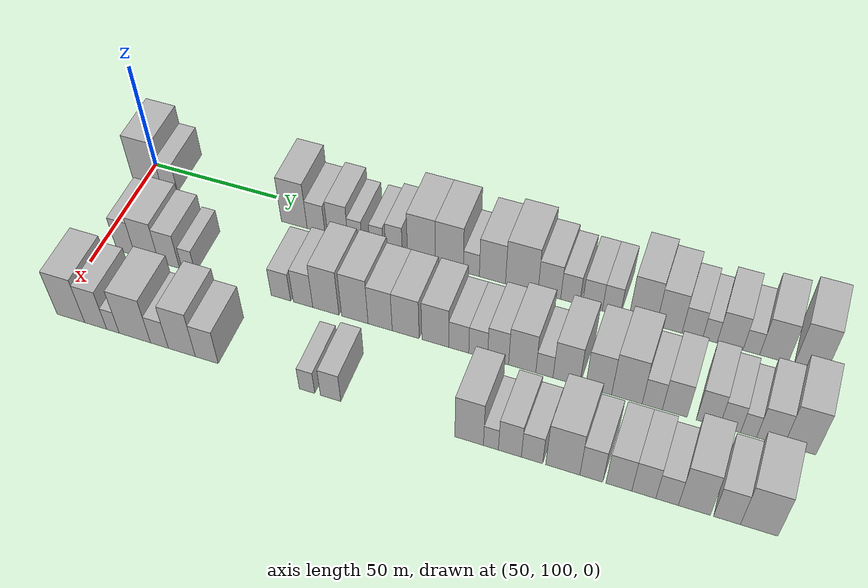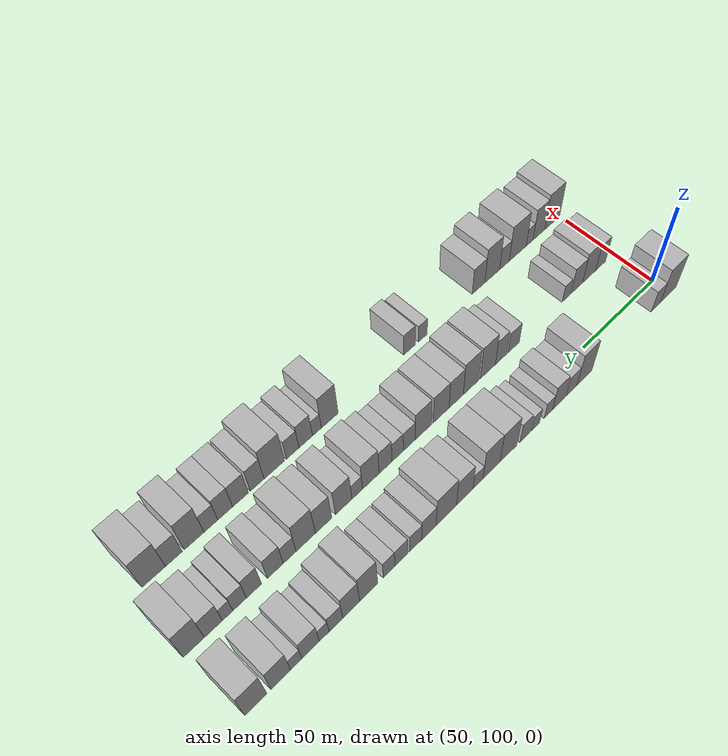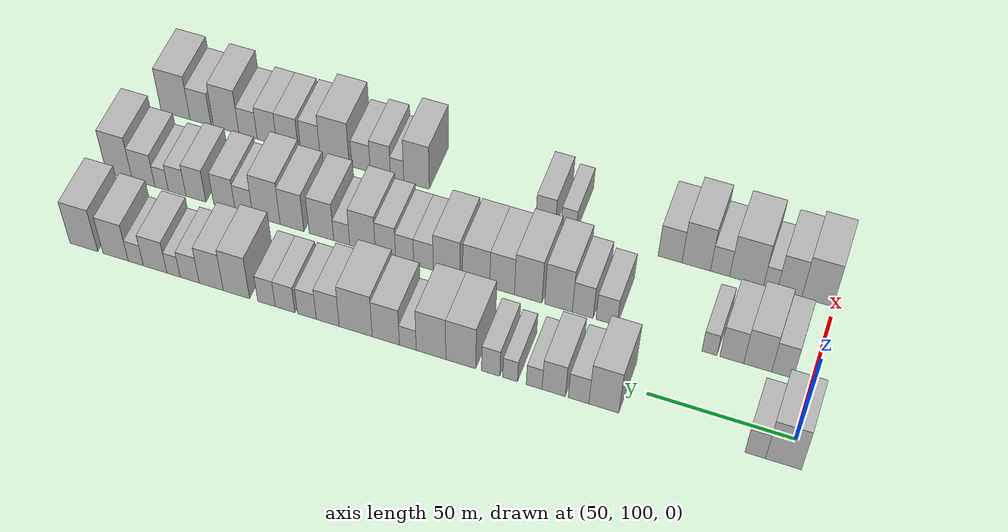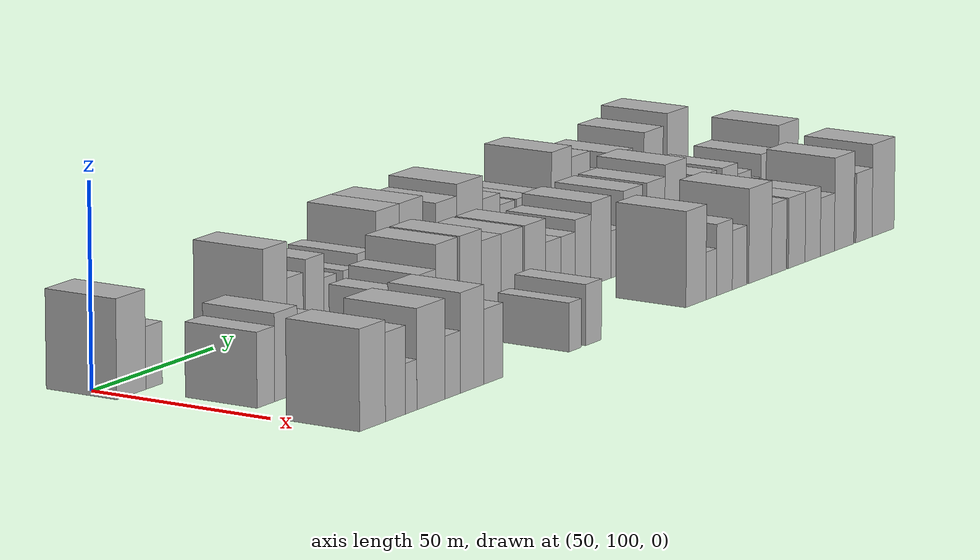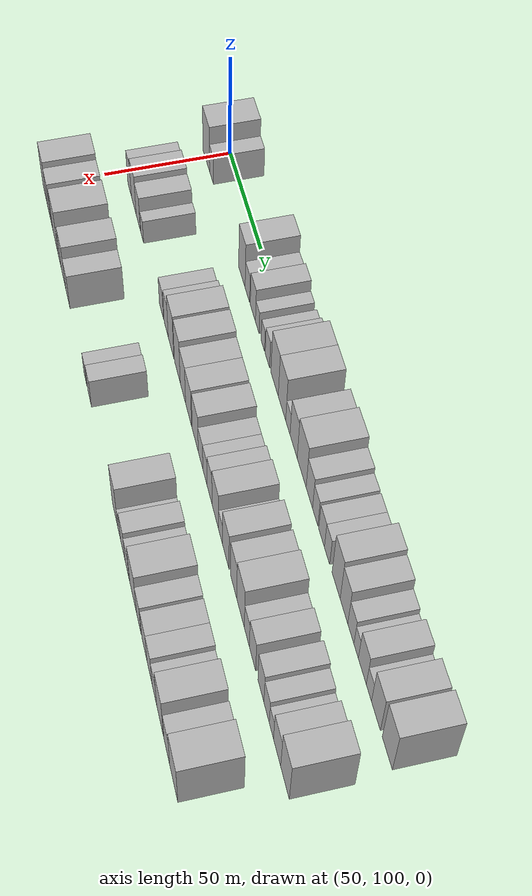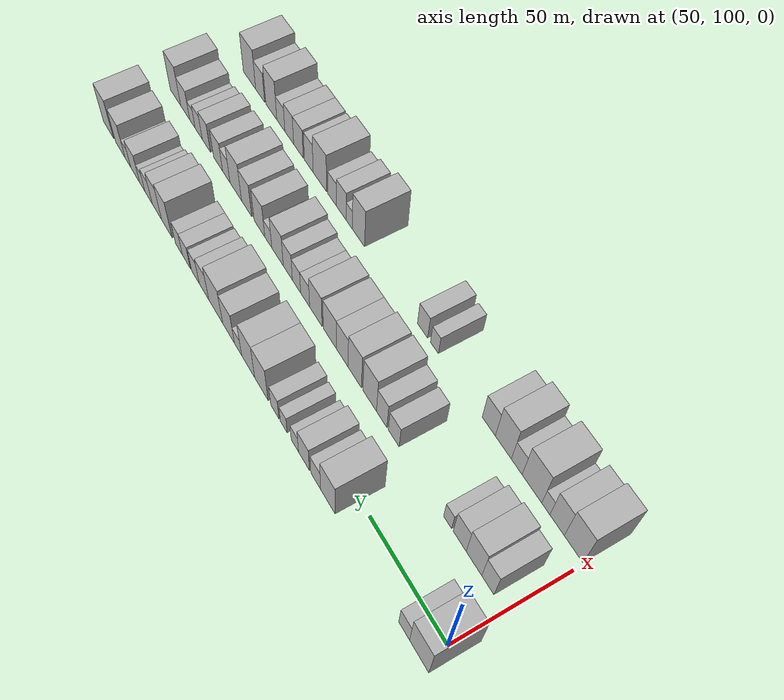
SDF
<sdf version="1.6">
 <world name="default">
  <model name="building_47">
   <static>1</static>
   <pose>50.0000 101.6979 0 0.000000 0.000000 0.000000</pose>
   <link name="link">
    <pose>0 0 12.00 0 0 0</pose>
    <collision name="collision"><geometry><box><size>20.0000 11.7844 24.0000</size></box></geometry></collision>
    <visual name="visual">
     <cast_shadows>0</cast_shadows>
     <geometry><box><size>20.0000 11.7844 24.0000</size></box></geometry>
     <material>
      <script>
       <uri>model://HANNAS_wall/materials/scripts</uri>
       <uri>model://HANNAS_wall/materials/textures</uri>
       <name>vrc/HANNAS_wall</name>
      </script>
     </material>
    </visual>
   </link>
  </model>
  <model name="building_48">
   <static>1</static>
   <pose>50.0000 110.9772 0 0.000000 0.000000 0.000000</pose>
   <link name="link">
    <pose>0 0 7.50 0 0 0</pose>
    <collision name="collision"><geometry><box><size>20.0000 6.7743 15.0000</size></box></geometry></collision>
    <visual name="visual">
     <cast_shadows>0</cast_shadows>
     <geometry><box><size>20.0000 6.7743 15.0000</size></box></geometry>
     <material>
      <script>
       <uri>model://HANNAS_wall/materials/scripts</uri>
       <uri>model://HANNAS_wall/materials/textures</uri>
       <name>vrc/HANNAS_wall</name>
      </script>
     </material>
    </visual>
   </link>
  </model>
  <model name="building_49">
   <static>1</static>
   <pose>50.0000 161.6814 0 0.000000 0.000000 0.000000</pose>
   <link name="link">
    <pose>0 0 12.00 0 0 0</pose>
    <collision name="collision"><geometry><box><size>20.0000 10.2114 24.0000</size></box></geometry></collision>
    <visual name="visual">
     <cast_shadows>0</cast_shadows>
     <geometry><box><size>20.0000 10.2114 24.0000</size></box></geometry>
     <material>
      <script>
       <uri>model://HANNAS_wall/materials/scripts</uri>
       <uri>model://HANNAS_wall/materials/textures</uri>
       <name>vrc/HANNAS_wall</name>
      </script>
     </material>
    </visual>
   </link>
  </model>
  <model name="building_50">
   <static>1</static>
   <pose>50.0000 170.3060 0 0.000000 0.000000 0.000000</pose>
   <link name="link">
    <pose>0 0 7.50 0 0 0</pose>
    <collision name="collision"><geometry><box><size>20.0000 7.0377 15.0000</size></box></geometry></collision>
    <visual name="visual">
     <cast_shadows>0</cast_shadows>
     <geometry><box><size>20.0000 7.0377 15.0000</size></box></geometry>
     <material>
      <script>
       <uri>model://HANNAS_wall/materials/scripts</uri>
       <uri>model://HANNAS_wall/materials/textures</uri>
       <name>vrc/HANNAS_wall</name>
      </script>
     </material>
    </visual>
   </link>
  </model>
  <model name="building_51">
   <static>1</static>
   <pose>50.0000 178.8272 0 0.000000 0.000000 0.000000</pose>
   <link name="link">
    <pose>0 0 9.00 0 0 0</pose>
    <collision name="collision"><geometry><box><size>20.0000 8.0048 18.0000</size></box></geometry></collision>
    <visual name="visual">
     <cast_shadows>0</cast_shadows>
     <geometry><box><size>20.0000 8.0048 18.0000</size></box></geometry>
     <material>
      <script>
       <uri>model://HANNAS_wall/materials/scripts</uri>
       <uri>model://HANNAS_wall/materials/textures</uri>
       <name>vrc/HANNAS_wall</name>
      </script>
     </material>
    </visual>
   </link>
  </model>
  <model name="building_52">
   <static>1</static>
   <pose>50.0000 185.5706 0 0.000000 0.000000 0.000000</pose>
   <link name="link">
    <pose>0 0 6.00 0 0 0</pose>
    <collision name="collision"><geometry><box><size>20.0000 5.4821 12.0000</size></box></geometry></collision>
    <visual name="visual">
     <cast_shadows>0</cast_shadows>
     <geometry><box><size>20.0000 5.4821 12.0000</size></box></geometry>
     <material>
      <script>
       <uri>model://HANNAS_wall/materials/scripts</uri>
       <uri>model://HANNAS_wall/materials/textures</uri>
       <name>vrc/HANNAS_wall</name>
      </script>
     </material>
    </visual>
   </link>
  </model>
  <model name="building_53">
   <static>1</static>
   <pose>50.0000 193.8831 0 0.000000 0.000000 0.000000</pose>
   <link name="link">
    <pose>0 0 6.00 0 0 0</pose>
    <collision name="collision"><geometry><box><size>20.0000 5.1428 12.0000</size></box></geometry></collision>
    <visual name="visual">
     <cast_shadows>0</cast_shadows>
     <geometry><box><size>20.0000 5.1428 12.0000</size></box></geometry>
     <material>
      <script>
       <uri>model://HANNAS_wall/materials/scripts</uri>
       <uri>model://HANNAS_wall/materials/textures</uri>
       <name>vrc/HANNAS_wall</name>
      </script>
     </material>
    </visual>
   </link>
  </model>
  <model name="building_54">
   <static>1</static>
   <pose>50.0000 200.6551 0 0.000000 0.000000 0.000000</pose>
   <link name="link">
    <pose>0 0 7.50 0 0 0</pose>
    <collision name="collision"><geometry><box><size>20.0000 6.4012 15.0000</size></box></geometry></collision>
    <visual name="visual">
     <cast_shadows>0</cast_shadows>
     <geometry><box><size>20.0000 6.4012 15.0000</size></box></geometry>
     <material>
      <script>
       <uri>model://HANNAS_wall/materials/scripts</uri>
       <uri>model://HANNAS_wall/materials/textures</uri>
       <name>vrc/HANNAS_wall</name>
      </script>
     </material>
    </visual>
   </link>
  </model>
  <model name="building_55">
   <static>1</static>
   <pose>50.0000 211.1271 0 0.000000 0.000000 0.000000</pose>
   <link name="link">
    <pose>0 0 12.00 0 0 0</pose>
    <collision name="collision"><geometry><box><size>20.0000 10.5428 24.0000</size></box></geometry></collision>
    <visual name="visual">
     <cast_shadows>0</cast_shadows>
     <geometry><box><size>20.0000 10.5428 24.0000</size></box></geometry>
     <material>
      <script>
       <uri>model://HANNAS_wall/materials/scripts</uri>
       <uri>model://HANNAS_wall/materials/textures</uri>
       <name>vrc/HANNAS_wall</name>
      </script>
     </material>
    </visual>
   </link>
  </model>
  <model name="building_56">
   <static>1</static>
   <pose>50.0000 221.6350 0 0.000000 0.000000 0.000000</pose>
   <link name="link">
    <pose>0 0 12.00 0 0 0</pose>
    <collision name="collision"><geometry><box><size>20.0000 10.4730 24.0000</size></box></geometry></collision>
    <visual name="visual">
     <cast_shadows>0</cast_shadows>
     <geometry><box><size>20.0000 10.4730 24.0000</size></box></geometry>
     <material>
      <script>
       <uri>model://HANNAS_wall/materials/scripts</uri>
       <uri>model://HANNAS_wall/materials/textures</uri>
       <name>vrc/HANNAS_wall</name>
      </script>
     </material>
    </visual>
   </link>
  </model>
  <model name="building_57">
   <static>1</static>
   <pose>50.0000 229.8627 0 0.000000 0.000000 0.000000</pose>
   <link name="link">
    <pose>0 0 6.00 0 0 0</pose>
    <collision name="collision"><geometry><box><size>20.0000 5.9825 12.0000</size></box></geometry></collision>
    <visual name="visual">
     <cast_shadows>0</cast_shadows>
     <geometry><box><size>20.0000 5.9825 12.0000</size></box></geometry>
     <material>
      <script>
       <uri>model://HANNAS_wall/materials/scripts</uri>
       <uri>model://HANNAS_wall/materials/textures</uri>
       <name>vrc/HANNAS_wall</name>
      </script>
     </material>
    </visual>
   </link>
  </model>
  <model name="building_58">
   <static>1</static>
   <pose>50.0000 237.6955 0 0.000000 0.000000 0.000000</pose>
   <link name="link">
    <pose>0 0 10.50 0 0 0</pose>
    <collision name="collision"><geometry><box><size>20.0000 9.6830 21.0000</size></box></geometry></collision>
    <visual name="visual">
     <cast_shadows>0</cast_shadows>
     <geometry><box><size>20.0000 9.6830 21.0000</size></box></geometry>
     <material>
      <script>
       <uri>model://HANNAS_wall/materials/scripts</uri>
       <uri>model://HANNAS_wall/materials/textures</uri>
       <name>vrc/HANNAS_wall</name>
      </script>
     </material>
    </visual>
   </link>
  </model>
  <model name="building_59">
   <static>1</static>
   <pose>50.0000 248.4919 0 0.000000 0.000000 0.000000</pose>
   <link name="link">
    <pose>0 0 12.00 0 0 0</pose>
    <collision name="collision"><geometry><box><size>20.0000 11.9099 24.0000</size></box></geometry></collision>
    <visual name="visual">
     <cast_shadows>0</cast_shadows>
     <geometry><box><size>20.0000 11.9099 24.0000</size></box></geometry>
     <material>
      <script>
       <uri>model://HANNAS_wall/materials/scripts</uri>
       <uri>model://HANNAS_wall/materials/textures</uri>
       <name>vrc/HANNAS_wall</name>
      </script>
     </material>
    </visual>
   </link>
  </model>
  <model name="building_60">
   <static>1</static>
   <pose>50.0000 258.5899 0 0.000000 0.000000 0.000000</pose>
   <link name="link">
    <pose>0 0 9.00 0 0 0</pose>
    <collision name="collision"><geometry><box><size>20.0000 8.2860 18.0000</size></box></geometry></collision>
    <visual name="visual">
     <cast_shadows>0</cast_shadows>
     <geometry><box><size>20.0000 8.2860 18.0000</size></box></geometry>
     <material>
      <script>
       <uri>model://HANNAS_wall/materials/scripts</uri>
       <uri>model://HANNAS_wall/materials/textures</uri>
       <name>vrc/HANNAS_wall</name>
      </script>
     </material>
    </visual>
   </link>
  </model>
  <model name="building_61">
   <static>1</static>
   <pose>50.0000 266.1512 0 0.000000 0.000000 0.000000</pose>
   <link name="link">
    <pose>0 0 7.50 0 0 0</pose>
    <collision name="collision"><geometry><box><size>20.0000 6.8367 15.0000</size></box></geometry></collision>
    <visual name="visual">
     <cast_shadows>0</cast_shadows>
     <geometry><box><size>20.0000 6.8367 15.0000</size></box></geometry>
     <material>
      <script>
       <uri>model://HANNAS_wall/materials/scripts</uri>
       <uri>model://HANNAS_wall/materials/textures</uri>
       <name>vrc/HANNAS_wall</name>
      </script>
     </material>
    </visual>
   </link>
  </model>
  <model name="building_62">
   <static>1</static>
   <pose>50.0000 274.1442 0 0.000000 0.000000 0.000000</pose>
   <link name="link">
    <pose>0 0 7.50 0 0 0</pose>
    <collision name="collision"><geometry><box><size>20.0000 7.1492 15.0000</size></box></geometry></collision>
    <visual name="visual">
     <cast_shadows>0</cast_shadows>
     <geometry><box><size>20.0000 7.1492 15.0000</size></box></geometry>
     <material>
      <script>
       <uri>model://HANNAS_wall/materials/scripts</uri>
       <uri>model://HANNAS_wall/materials/textures</uri>
       <name>vrc/HANNAS_wall</name>
      </script>
     </material>
    </visual>
   </link>
  </model>
  <model name="building_63">
   <static>1</static>
   <pose>50.0000 280.9306 0 0.000000 0.000000 0.000000</pose>
   <link name="link">
    <pose>0 0 7.50 0 0 0</pose>
    <collision name="collision"><geometry><box><size>20.0000 6.4235 15.0000</size></box></geometry></collision>
    <visual name="visual">
     <cast_shadows>0</cast_shadows>
     <geometry><box><size>20.0000 6.4235 15.0000</size></box></geometry>
     <material>
      <script>
       <uri>model://HANNAS_wall/materials/scripts</uri>
       <uri>model://HANNAS_wall/materials/textures</uri>
       <name>vrc/HANNAS_wall</name>
      </script>
     </material>
    </visual>
   </link>
  </model>
  <model name="building_64">
   <static>1</static>
   <pose>50.0000 292.0159 0 0.000000 0.000000 0.000000</pose>
   <link name="link">
    <pose>0 0 12.00 0 0 0</pose>
    <collision name="collision"><geometry><box><size>20.0000 9.7471 24.0000</size></box></geometry></collision>
    <visual name="visual">
     <cast_shadows>0</cast_shadows>
     <geometry><box><size>20.0000 9.7471 24.0000</size></box></geometry>
     <material>
      <script>
       <uri>model://HANNAS_wall/materials/scripts</uri>
       <uri>model://HANNAS_wall/materials/textures</uri>
       <name>vrc/HANNAS_wall</name>
      </script>
     </material>
    </visual>
   </link>
  </model>
  <model name="building_65">
   <static>1</static>
   <pose>50.0000 301.3566 0 0.000000 0.000000 0.000000</pose>
   <link name="link">
    <pose>0 0 10.50 0 0 0</pose>
    <collision name="collision"><geometry><box><size>20.0000 8.9344 21.0000</size></box></geometry></collision>
    <visual name="visual">
     <cast_shadows>0</cast_shadows>
     <geometry><box><size>20.0000 8.9344 21.0000</size></box></geometry>
     <material>
      <script>
       <uri>model://HANNAS_wall/materials/scripts</uri>
       <uri>model://HANNAS_wall/materials/textures</uri>
       <name>vrc/HANNAS_wall</name>
      </script>
     </material>
    </visual>
   </link>
  </model>
  <model name="building_66">
   <static>1</static>
   <pose>50.0000 309.3874 0 0.000000 0.000000 0.000000</pose>
   <link name="link">
    <pose>0 0 7.50 0 0 0</pose>
    <collision name="collision"><geometry><box><size>20.0000 7.1272 15.0000</size></box></geometry></collision>
    <visual name="visual">
     <cast_shadows>0</cast_shadows>
     <geometry><box><size>20.0000 7.1272 15.0000</size></box></geometry>
     <material>
      <script>
       <uri>model://HANNAS_wall/materials/scripts</uri>
       <uri>model://HANNAS_wall/materials/textures</uri>
       <name>vrc/HANNAS_wall</name>
      </script>
     </material>
    </visual>
   </link>
  </model>
  <model name="building_67">
   <static>1</static>
   <pose>50.0000 315.4517 0 0.000000 0.000000 0.000000</pose>
   <link name="link">
    <pose>0 0 6.00 0 0 0</pose>
    <collision name="collision"><geometry><box><size>20.0000 5.0014 12.0000</size></box></geometry></collision>
    <visual name="visual">
     <cast_shadows>0</cast_shadows>
     <geometry><box><size>20.0000 5.0014 12.0000</size></box></geometry>
     <material>
      <script>
       <uri>model://HANNAS_wall/materials/scripts</uri>
       <uri>model://HANNAS_wall/materials/textures</uri>
       <name>vrc/HANNAS_wall</name>
      </script>
     </material>
    </visual>
   </link>
  </model>
  <model name="building_68">
   <static>1</static>
   <pose>50.0000 322.3887 0 0.000000 0.000000 0.000000</pose>
   <link name="link">
    <pose>0 0 9.00 0 0 0</pose>
    <collision name="collision"><geometry><box><size>20.0000 8.8725 18.0000</size></box></geometry></collision>
    <visual name="visual">
     <cast_shadows>0</cast_shadows>
     <geometry><box><size>20.0000 8.8725 18.0000</size></box></geometry>
     <material>
      <script>
       <uri>model://HANNAS_wall/materials/scripts</uri>
       <uri>model://HANNAS_wall/materials/textures</uri>
       <name>vrc/HANNAS_wall</name>
      </script>
     </material>
    </visual>
   </link>
  </model>
  <model name="building_69">
   <static>1</static>
   <pose>50.0000 329.6839 0 0.000000 0.000000 0.000000</pose>
   <link name="link">
    <pose>0 0 6.00 0 0 0</pose>
    <collision name="collision"><geometry><box><size>20.0000 5.7180 12.0000</size></box></geometry></collision>
    <visual name="visual">
     <cast_shadows>0</cast_shadows>
     <geometry><box><size>20.0000 5.7180 12.0000</size></box></geometry>
     <material>
      <script>
       <uri>model://HANNAS_wall/materials/scripts</uri>
       <uri>model://HANNAS_wall/materials/textures</uri>
       <name>vrc/HANNAS_wall</name>
      </script>
     </material>
    </visual>
   </link>
  </model>
  <model name="building_70">
   <static>1</static>
   <pose>50.0000 337.3587 0 0.000000 0.000000 0.000000</pose>
   <link name="link">
    <pose>0 0 10.50 0 0 0</pose>
    <collision name="collision"><geometry><box><size>20.0000 9.6316 21.0000</size></box></geometry></collision>
    <visual name="visual">
     <cast_shadows>0</cast_shadows>
     <geometry><box><size>20.0000 9.6316 21.0000</size></box></geometry>
     <material>
      <script>
       <uri>model://HANNAS_wall/materials/scripts</uri>
       <uri>model://HANNAS_wall/materials/textures</uri>
       <name>vrc/HANNAS_wall</name>
      </script>
     </material>
    </visual>
   </link>
  </model>
  <model name="building_71">
   <static>1</static>
   <pose>50.0000 349.4940 0 0.000000 0.000000 0.000000</pose>
   <link name="link">
    <pose>0 0 12.00 0 0 0</pose>
    <collision name="collision"><geometry><box><size>20.0000 10.6389 24.0000</size></box></geometry></collision>
    <visual name="visual">
     <cast_shadows>0</cast_shadows>
     <geometry><box><size>20.0000 10.6389 24.0000</size></box></geometry>
     <material>
      <script>
       <uri>model://HANNAS_wall/materials/scripts</uri>
       <uri>model://HANNAS_wall/materials/textures</uri>
       <name>vrc/HANNAS_wall</name>
      </script>
     </material>
    </visual>
   </link>
  </model>
  <model name="building_124">
   <static>1</static>
   <pose>82.0000 110.0228 0 0.000000 0.000000 0.000000</pose>
   <link name="link">
    <pose>0 0 9.00 0 0 0</pose>
    <collision name="collision"><geometry><box><size>20.0000 7.3022 18.0000</size></box></geometry></collision>
    <visual name="visual">
     <cast_shadows>0</cast_shadows>
     <geometry><box><size>20.0000 7.3022 18.0000</size></box></geometry>
     <material>
      <script>
       <uri>model://HANNAS_wall/materials/scripts</uri>
       <uri>model://HANNAS_wall/materials/textures</uri>
       <name>vrc/HANNAS_wall</name>
      </script>
     </material>
    </visual>
   </link>
  </model>
  <model name="building_125">
   <static>1</static>
   <pose>82.0000 118.4263 0 0.000000 0.000000 0.000000</pose>
   <link name="link">
    <pose>0 0 10.50 0 0 0</pose>
    <collision name="collision"><geometry><box><size>20.0000 9.5049 21.0000</size></box></geometry></collision>
    <visual name="visual">
     <cast_shadows>0</cast_shadows>
     <geometry><box><size>20.0000 9.5049 21.0000</size></box></geometry>
     <material>
      <script>
       <uri>model://HANNAS_wall/materials/scripts</uri>
       <uri>model://HANNAS_wall/materials/textures</uri>
       <name>vrc/HANNAS_wall</name>
      </script>
     </material>
    </visual>
   </link>
  </model>
  <model name="building_126">
   <static>1</static>
   <pose>82.0000 127.2636 0 0.000000 0.000000 0.000000</pose>
   <link name="link">
    <pose>0 0 9.00 0 0 0</pose>
    <collision name="collision"><geometry><box><size>20.0000 8.1695 18.0000</size></box></geometry></collision>
    <visual name="visual">
     <cast_shadows>0</cast_shadows>
     <geometry><box><size>20.0000 8.1695 18.0000</size></box></geometry>
     <material>
      <script>
       <uri>model://HANNAS_wall/materials/scripts</uri>
       <uri>model://HANNAS_wall/materials/textures</uri>
       <name>vrc/HANNAS_wall</name>
      </script>
     </material>
    </visual>
   </link>
  </model>
  <model name="building_127">
   <static>1</static>
   <pose>82.0000 134.9237 0 0.000000 0.000000 0.000000</pose>
   <link name="link">
    <pose>0 0 6.00 0 0 0</pose>
    <collision name="collision"><geometry><box><size>20.0000 5.1508 12.0000</size></box></geometry></collision>
    <visual name="visual">
     <cast_shadows>0</cast_shadows>
     <geometry><box><size>20.0000 5.1508 12.0000</size></box></geometry>
     <material>
      <script>
       <uri>model://HANNAS_wall/materials/scripts</uri>
       <uri>model://HANNAS_wall/materials/textures</uri>
       <name>vrc/HANNAS_wall</name>
      </script>
     </material>
    </visual>
   </link>
  </model>
  <model name="building_128">
   <static>1</static>
   <pose>82.0000 170.6392 0 0.000000 0.000000 0.000000</pose>
   <link name="link">
    <pose>0 0 7.50 0 0 0</pose>
    <collision name="collision"><geometry><box><size>20.0000 7.4267 15.0000</size></box></geometry></collision>
    <visual name="visual">
     <cast_shadows>0</cast_shadows>
     <geometry><box><size>20.0000 7.4267 15.0000</size></box></geometry>
     <material>
      <script>
       <uri>model://HANNAS_wall/materials/scripts</uri>
       <uri>model://HANNAS_wall/materials/textures</uri>
       <name>vrc/HANNAS_wall</name>
      </script>
     </material>
    </visual>
   </link>
  </model>
  <model name="building_129">
   <static>1</static>
   <pose>82.0000 179.0198 0 0.000000 0.000000 0.000000</pose>
   <link name="link">
    <pose>0 0 9.00 0 0 0</pose>
    <collision name="collision"><geometry><box><size>20.0000 7.3344 18.0000</size></box></geometry></collision>
    <visual name="visual">
     <cast_shadows>0</cast_shadows>
     <geometry><box><size>20.0000 7.3344 18.0000</size></box></geometry>
     <material>
      <script>
       <uri>model://HANNAS_wall/materials/scripts</uri>
       <uri>model://HANNAS_wall/materials/textures</uri>
       <name>vrc/HANNAS_wall</name>
      </script>
     </material>
    </visual>
   </link>
  </model>
  <model name="building_130">
   <static>1</static>
   <pose>82.0000 187.5931 0 0.000000 0.000000 0.000000</pose>
   <link name="link">
    <pose>0 0 12.00 0 0 0</pose>
    <collision name="collision"><geometry><box><size>20.0000 9.8122 24.0000</size></box></geometry></collision>
    <visual name="visual">
     <cast_shadows>0</cast_shadows>
     <geometry><box><size>20.0000 9.8122 24.0000</size></box></geometry>
     <material>
      <script>
       <uri>model://HANNAS_wall/materials/scripts</uri>
       <uri>model://HANNAS_wall/materials/textures</uri>
       <name>vrc/HANNAS_wall</name>
      </script>
     </material>
    </visual>
   </link>
  </model>
  <model name="building_131">
   <static>1</static>
   <pose>82.0000 198.4019 0 0.000000 0.000000 0.000000</pose>
   <link name="link">
    <pose>0 0 12.00 0 0 0</pose>
    <collision name="collision"><geometry><box><size>20.0000 9.8053 24.0000</size></box></geometry></collision>
    <visual name="visual">
     <cast_shadows>0</cast_shadows>
     <geometry><box><size>20.0000 9.8053 24.0000</size></box></geometry>
     <material>
      <script>
       <uri>model://HANNAS_wall/materials/scripts</uri>
       <uri>model://HANNAS_wall/materials/textures</uri>
       <name>vrc/HANNAS_wall</name>
      </script>
     </material>
    </visual>
   </link>
  </model>
  <model name="building_132">
   <static>1</static>
   <pose>82.0000 207.7416 0 0.000000 0.000000 0.000000</pose>
   <link name="link">
    <pose>0 0 10.50 0 0 0</pose>
    <collision name="collision"><geometry><box><size>20.0000 8.8742 21.0000</size></box></geometry></collision>
    <visual name="visual">
     <cast_shadows>0</cast_shadows>
     <geometry><box><size>20.0000 8.8742 21.0000</size></box></geometry>
     <material>
      <script>
       <uri>model://HANNAS_wall/materials/scripts</uri>
       <uri>model://HANNAS_wall/materials/textures</uri>
       <name>vrc/HANNAS_wall</name>
      </script>
     </material>
    </visual>
   </link>
  </model>
  <model name="building_133">
   <static>1</static>
   <pose>82.0000 217.0721 0 0.000000 0.000000 0.000000</pose>
   <link name="link">
    <pose>0 0 10.50 0 0 0</pose>
    <collision name="collision"><geometry><box><size>20.0000 9.7868 21.0000</size></box></geometry></collision>
    <visual name="visual">
     <cast_shadows>0</cast_shadows>
     <geometry><box><size>20.0000 9.7868 21.0000</size></box></geometry>
     <material>
      <script>
       <uri>model://HANNAS_wall/materials/scripts</uri>
       <uri>model://HANNAS_wall/materials/textures</uri>
       <name>vrc/HANNAS_wall</name>
      </script>
     </material>
    </visual>
   </link>
  </model>
  <model name="building_134">
   <static>1</static>
   <pose>82.0000 227.8045 0 0.000000 0.000000 0.000000</pose>
   <link name="link">
    <pose>0 0 10.50 0 0 0</pose>
    <collision name="collision"><geometry><box><size>20.0000 9.6780 21.0000</size></box></geometry></collision>
    <visual name="visual">
     <cast_shadows>0</cast_shadows>
     <geometry><box><size>20.0000 9.6780 21.0000</size></box></geometry>
     <material>
      <script>
       <uri>model://HANNAS_wall/materials/scripts</uri>
       <uri>model://HANNAS_wall/materials/textures</uri>
       <name>vrc/HANNAS_wall</name>
      </script>
     </material>
    </visual>
   </link>
  </model>
  <model name="building_135">
   <static>1</static>
   <pose>82.0000 236.2207 0 0.000000 0.000000 0.000000</pose>
   <link name="link">
    <pose>0 0 7.50 0 0 0</pose>
    <collision name="collision"><geometry><box><size>20.0000 7.1544 15.0000</size></box></geometry></collision>
    <visual name="visual">
     <cast_shadows>0</cast_shadows>
     <geometry><box><size>20.0000 7.1544 15.0000</size></box></geometry>
     <material>
      <script>
       <uri>model://HANNAS_wall/materials/scripts</uri>
       <uri>model://HANNAS_wall/materials/textures</uri>
       <name>vrc/HANNAS_wall</name>
      </script>
     </material>
    </visual>
   </link>
  </model>
  <model name="building_136">
   <static>1</static>
   <pose>82.0000 243.1283 0 0.000000 0.000000 0.000000</pose>
   <link name="link">
    <pose>0 0 7.50 0 0 0</pose>
    <collision name="collision"><geometry><box><size>20.0000 6.6607 15.0000</size></box></geometry></collision>
    <visual name="visual">
     <cast_shadows>0</cast_shadows>
     <geometry><box><size>20.0000 6.6607 15.0000</size></box></geometry>
     <material>
      <script>
       <uri>model://HANNAS_wall/materials/scripts</uri>
       <uri>model://HANNAS_wall/materials/textures</uri>
       <name>vrc/HANNAS_wall</name>
      </script>
     </material>
    </visual>
   </link>
  </model>
  <model name="building_137">
   <static>1</static>
   <pose>82.0000 250.1641 0 0.000000 0.000000 0.000000</pose>
   <link name="link">
    <pose>0 0 9.00 0 0 0</pose>
    <collision name="collision"><geometry><box><size>20.0000 7.4108 18.0000</size></box></geometry></collision>
    <visual name="visual">
     <cast_shadows>0</cast_shadows>
     <geometry><box><size>20.0000 7.4108 18.0000</size></box></geometry>
     <material>
      <script>
       <uri>model://HANNAS_wall/materials/scripts</uri>
       <uri>model://HANNAS_wall/materials/textures</uri>
       <name>vrc/HANNAS_wall</name>
      </script>
     </material>
    </visual>
   </link>
  </model>
  <model name="building_138">
   <static>1</static>
   <pose>82.0000 258.6452 0 0.000000 0.000000 0.000000</pose>
   <link name="link">
    <pose>0 0 10.50 0 0 0</pose>
    <collision name="collision"><geometry><box><size>20.0000 9.5515 21.0000</size></box></geometry></collision>
    <visual name="visual">
     <cast_shadows>0</cast_shadows>
     <geometry><box><size>20.0000 9.5515 21.0000</size></box></geometry>
     <material>
      <script>
       <uri>model://HANNAS_wall/materials/scripts</uri>
       <uri>model://HANNAS_wall/materials/textures</uri>
       <name>vrc/HANNAS_wall</name>
      </script>
     </material>
    </visual>
   </link>
  </model>
  <model name="building_139">
   <static>1</static>
   <pose>82.0000 266.4026 0 0.000000 0.000000 0.000000</pose>
   <link name="link">
    <pose>0 0 6.00 0 0 0</pose>
    <collision name="collision"><geometry><box><size>20.0000 5.9632 12.0000</size></box></geometry></collision>
    <visual name="visual">
     <cast_shadows>0</cast_shadows>
     <geometry><box><size>20.0000 5.9632 12.0000</size></box></geometry>
     <material>
      <script>
       <uri>model://HANNAS_wall/materials/scripts</uri>
       <uri>model://HANNAS_wall/materials/textures</uri>
       <name>vrc/HANNAS_wall</name>
      </script>
     </material>
    </visual>
   </link>
  </model>
  <model name="building_140">
   <static>1</static>
   <pose>82.0000 273.9709 0 0.000000 0.000000 0.000000</pose>
   <link name="link">
    <pose>0 0 10.50 0 0 0</pose>
    <collision name="collision"><geometry><box><size>20.0000 9.1734 21.0000</size></box></geometry></collision>
    <visual name="visual">
     <cast_shadows>0</cast_shadows>
     <geometry><box><size>20.0000 9.1734 21.0000</size></box></geometry>
     <material>
      <script>
       <uri>model://HANNAS_wall/materials/scripts</uri>
       <uri>model://HANNAS_wall/materials/textures</uri>
       <name>vrc/HANNAS_wall</name>
      </script>
     </material>
    </visual>
   </link>
  </model>
  <model name="building_141">
   <static>1</static>
   <pose>82.0000 285.0195 0 0.000000 0.000000 0.000000</pose>
   <link name="link">
    <pose>0 0 10.50 0 0 0</pose>
    <collision name="collision"><geometry><box><size>20.0000 8.9238 21.0000</size></box></geometry></collision>
    <visual name="visual">
     <cast_shadows>0</cast_shadows>
     <geometry><box><size>20.0000 8.9238 21.0000</size></box></geometry>
     <material>
      <script>
       <uri>model://HANNAS_wall/materials/scripts</uri>
       <uri>model://HANNAS_wall/materials/textures</uri>
       <name>vrc/HANNAS_wall</name>
      </script>
     </material>
    </visual>
   </link>
  </model>
  <model name="building_142">
   <static>1</static>
   <pose>82.0000 294.6560 0 0.000000 0.000000 0.000000</pose>
   <link name="link">
    <pose>0 0 12.00 0 0 0</pose>
    <collision name="collision"><geometry><box><size>20.0000 10.3492 24.0000</size></box></geometry></collision>
    <visual name="visual">
     <cast_shadows>0</cast_shadows>
     <geometry><box><size>20.0000 10.3492 24.0000</size></box></geometry>
     <material>
      <script>
       <uri>model://HANNAS_wall/materials/scripts</uri>
       <uri>model://HANNAS_wall/materials/textures</uri>
       <name>vrc/HANNAS_wall</name>
      </script>
     </material>
    </visual>
   </link>
  </model>
  <model name="building_143">
   <static>1</static>
   <pose>82.0000 303.2127 0 0.000000 0.000000 0.000000</pose>
   <link name="link">
    <pose>0 0 7.50 0 0 0</pose>
    <collision name="collision"><geometry><box><size>20.0000 6.7642 15.0000</size></box></geometry></collision>
    <visual name="visual">
     <cast_shadows>0</cast_shadows>
     <geometry><box><size>20.0000 6.7642 15.0000</size></box></geometry>
     <material>
      <script>
       <uri>model://HANNAS_wall/materials/scripts</uri>
       <uri>model://HANNAS_wall/materials/textures</uri>
       <name>vrc/HANNAS_wall</name>
      </script>
     </material>
    </visual>
   </link>
  </model>
  <model name="building_144">
   <static>1</static>
   <pose>82.0000 310.7174 0 0.000000 0.000000 0.000000</pose>
   <link name="link">
    <pose>0 0 9.00 0 0 0</pose>
    <collision name="collision"><geometry><box><size>20.0000 8.2454 18.0000</size></box></geometry></collision>
    <visual name="visual">
     <cast_shadows>0</cast_shadows>
     <geometry><box><size>20.0000 8.2454 18.0000</size></box></geometry>
     <material>
      <script>
       <uri>model://HANNAS_wall/materials/scripts</uri>
       <uri>model://HANNAS_wall/materials/textures</uri>
       <name>vrc/HANNAS_wall</name>
      </script>
     </material>
    </visual>
   </link>
  </model>
  <model name="building_145">
   <static>1</static>
   <pose>82.0000 321.6884 0 0.000000 0.000000 0.000000</pose>
   <link name="link">
    <pose>0 0 9.00 0 0 0</pose>
    <collision name="collision"><geometry><box><size>20.0000 7.6966 18.0000</size></box></geometry></collision>
    <visual name="visual">
     <cast_shadows>0</cast_shadows>
     <geometry><box><size>20.0000 7.6966 18.0000</size></box></geometry>
     <material>
      <script>
       <uri>model://HANNAS_wall/materials/scripts</uri>
       <uri>model://HANNAS_wall/materials/textures</uri>
       <name>vrc/HANNAS_wall</name>
      </script>
     </material>
    </visual>
   </link>
  </model>
  <model name="building_146">
   <static>1</static>
   <pose>82.0000 328.9381 0 0.000000 0.000000 0.000000</pose>
   <link name="link">
    <pose>0 0 7.50 0 0 0</pose>
    <collision name="collision"><geometry><box><size>20.0000 6.8027 15.0000</size></box></geometry></collision>
    <visual name="visual">
     <cast_shadows>0</cast_shadows>
     <geometry><box><size>20.0000 6.8027 15.0000</size></box></geometry>
     <material>
      <script>
       <uri>model://HANNAS_wall/materials/scripts</uri>
       <uri>model://HANNAS_wall/materials/textures</uri>
       <name>vrc/HANNAS_wall</name>
      </script>
     </material>
    </visual>
   </link>
  </model>
  <model name="building_147">
   <static>1</static>
   <pose>82.0000 334.9516 0 0.000000 0.000000 0.000000</pose>
   <link name="link">
    <pose>0 0 6.00 0 0 0</pose>
    <collision name="collision"><geometry><box><size>20.0000 5.2245 12.0000</size></box></geometry></collision>
    <visual name="visual">
     <cast_shadows>0</cast_shadows>
     <geometry><box><size>20.0000 5.2245 12.0000</size></box></geometry>
     <material>
      <script>
       <uri>model://HANNAS_wall/materials/scripts</uri>
       <uri>model://HANNAS_wall/materials/textures</uri>
       <name>vrc/HANNAS_wall</name>
      </script>
     </material>
    </visual>
   </link>
  </model>
  <model name="building_148">
   <static>1</static>
   <pose>82.0000 341.9794 0 0.000000 0.000000 0.000000</pose>
   <link name="link">
    <pose>0 0 9.00 0 0 0</pose>
    <collision name="collision"><geometry><box><size>20.0000 8.8310 18.0000</size></box></geometry></collision>
    <visual name="visual">
     <cast_shadows>0</cast_shadows>
     <geometry><box><size>20.0000 8.8310 18.0000</size></box></geometry>
     <material>
      <script>
       <uri>model://HANNAS_wall/materials/scripts</uri>
       <uri>model://HANNAS_wall/materials/textures</uri>
       <name>vrc/HANNAS_wall</name>
      </script>
     </material>
    </visual>
   </link>
  </model>
  <model name="building_149">
   <static>1</static>
   <pose>82.0000 351.5084 0 0.000000 0.000000 0.000000</pose>
   <link name="link">
    <pose>0 0 12.00 0 0 0</pose>
    <collision name="collision"><geometry><box><size>20.0000 10.2272 24.0000</size></box></geometry></collision>
    <visual name="visual">
     <cast_shadows>0</cast_shadows>
     <geometry><box><size>20.0000 10.2272 24.0000</size></box></geometry>
     <material>
      <script>
       <uri>model://HANNAS_wall/materials/scripts</uri>
       <uri>model://HANNAS_wall/materials/textures</uri>
       <name>vrc/HANNAS_wall</name>
      </script>
     </material>
    </visual>
   </link>
  </model>
  <model name="building_195">
   <static>1</static>
   <pose>114.0000 105.9180 0 0.000000 0.000000 0.000000</pose>
   <link name="link">
    <pose>0 0 12.00 0 0 0</pose>
    <collision name="collision"><geometry><box><size>20.0000 10.8065 24.0000</size></box></geometry></collision>
    <visual name="visual">
     <cast_shadows>0</cast_shadows>
     <geometry><box><size>20.0000 10.8065 24.0000</size></box></geometry>
     <material>
      <script>
       <uri>model://HANNAS_wall/materials/scripts</uri>
       <uri>model://HANNAS_wall/materials/textures</uri>
       <name>vrc/HANNAS_wall</name>
      </script>
     </material>
    </visual>
   </link>
  </model>
  <model name="building_196">
   <static>1</static>
   <pose>114.0000 115.5728 0 0.000000 0.000000 0.000000</pose>
   <link name="link">
    <pose>0 0 10.50 0 0 0</pose>
    <collision name="collision"><geometry><box><size>20.0000 8.5030 21.0000</size></box></geometry></collision>
    <visual name="visual">
     <cast_shadows>0</cast_shadows>
     <geometry><box><size>20.0000 8.5030 21.0000</size></box></geometry>
     <material>
      <script>
       <uri>model://HANNAS_wall/materials/scripts</uri>
       <uri>model://HANNAS_wall/materials/textures</uri>
       <name>vrc/HANNAS_wall</name>
      </script>
     </material>
    </visual>
   </link>
  </model>
  <model name="building_197">
   <static>1</static>
   <pose>114.0000 122.2343 0 0.000000 0.000000 0.000000</pose>
   <link name="link">
    <pose>0 0 6.00 0 0 0</pose>
    <collision name="collision"><geometry><box><size>20.0000 4.8201 12.0000</size></box></geometry></collision>
    <visual name="visual">
     <cast_shadows>0</cast_shadows>
     <geometry><box><size>20.0000 4.8201 12.0000</size></box></geometry>
     <material>
      <script>
       <uri>model://HANNAS_wall/materials/scripts</uri>
       <uri>model://HANNAS_wall/materials/textures</uri>
       <name>vrc/HANNAS_wall</name>
      </script>
     </material>
    </visual>
   </link>
  </model>
  <model name="building_198">
   <static>1</static>
   <pose>114.0000 130.6189 0 0.000000 0.000000 0.000000</pose>
   <link name="link">
    <pose>0 0 12.00 0 0 0</pose>
    <collision name="collision"><geometry><box><size>20.0000 11.9491 24.0000</size></box></geometry></collision>
    <visual name="visual">
     <cast_shadows>0</cast_shadows>
     <geometry><box><size>20.0000 11.9491 24.0000</size></box></geometry>
     <material>
      <script>
       <uri>model://HANNAS_wall/materials/scripts</uri>
       <uri>model://HANNAS_wall/materials/textures</uri>
       <name>vrc/HANNAS_wall</name>
      </script>
     </material>
    </visual>
   </link>
  </model>
  <model name="building_199">
   <static>1</static>
   <pose>114.0000 139.9607 0 0.000000 0.000000 0.000000</pose>
   <link name="link">
    <pose>0 0 7.50 0 0 0</pose>
    <collision name="collision"><geometry><box><size>20.0000 6.7345 15.0000</size></box></geometry></collision>
    <visual name="visual">
     <cast_shadows>0</cast_shadows>
     <geometry><box><size>20.0000 6.7345 15.0000</size></box></geometry>
     <material>
      <script>
       <uri>model://HANNAS_wall/materials/scripts</uri>
       <uri>model://HANNAS_wall/materials/textures</uri>
       <name>vrc/HANNAS_wall</name>
      </script>
     </material>
    </visual>
   </link>
  </model>
  <model name="building_200">
   <static>1</static>
   <pose>114.0000 148.3890 0 0.000000 0.000000 0.000000</pose>
   <link name="link">
    <pose>0 0 12.00 0 0 0</pose>
    <collision name="collision"><geometry><box><size>20.0000 10.1221 24.0000</size></box></geometry></collision>
    <visual name="visual">
     <cast_shadows>0</cast_shadows>
     <geometry><box><size>20.0000 10.1221 24.0000</size></box></geometry>
     <material>
      <script>
       <uri>model://HANNAS_wall/materials/scripts</uri>
       <uri>model://HANNAS_wall/materials/textures</uri>
       <name>vrc/HANNAS_wall</name>
      </script>
     </material>
    </visual>
   </link>
  </model>
  <model name="building_201">
   <static>1</static>
   <pose>114.0000 157.6953 0 0.000000 0.000000 0.000000</pose>
   <link name="link">
    <pose>0 0 9.00 0 0 0</pose>
    <collision name="collision"><geometry><box><size>20.0000 8.4905 18.0000</size></box></geometry></collision>
    <visual name="visual">
     <cast_shadows>0</cast_shadows>
     <geometry><box><size>20.0000 8.4905 18.0000</size></box></geometry>
     <material>
      <script>
       <uri>model://HANNAS_wall/materials/scripts</uri>
       <uri>model://HANNAS_wall/materials/textures</uri>
       <name>vrc/HANNAS_wall</name>
      </script>
     </material>
    </visual>
   </link>
  </model>
  <model name="building_202">
   <static>1</static>
   <pose>114.0000 194.2987 0 0.000000 0.000000 0.000000</pose>
   <link name="link">
    <pose>0 0 6.00 0 0 0</pose>
    <collision name="collision"><geometry><box><size>20.0000 5.5721 12.0000</size></box></geometry></collision>
    <visual name="visual">
     <cast_shadows>0</cast_shadows>
     <geometry><box><size>20.0000 5.5721 12.0000</size></box></geometry>
     <material>
      <script>
       <uri>model://HANNAS_wall/materials/scripts</uri>
       <uri>model://HANNAS_wall/materials/textures</uri>
       <name>vrc/HANNAS_wall</name>
      </script>
     </material>
    </visual>
   </link>
  </model>
  <model name="building_203">
   <static>1</static>
   <pose>114.0000 202.7065 0 0.000000 0.000000 0.000000</pose>
   <link name="link">
    <pose>0 0 7.50 0 0 0</pose>
    <collision name="collision"><geometry><box><size>20.0000 7.2435 15.0000</size></box></geometry></collision>
    <visual name="visual">
     <cast_shadows>0</cast_shadows>
     <geometry><box><size>20.0000 7.2435 15.0000</size></box></geometry>
     <material>
      <script>
       <uri>model://HANNAS_wall/materials/scripts</uri>
       <uri>model://HANNAS_wall/materials/textures</uri>
       <name>vrc/HANNAS_wall</name>
      </script>
     </material>
    </visual>
   </link>
  </model>
  <model name="building_204">
   <static>1</static>
   <pose>114.0000 250.7998 0 0.000000 0.000000 0.000000</pose>
   <link name="link">
    <pose>0 0 12.00 0 0 0</pose>
    <collision name="collision"><geometry><box><size>20.0000 9.6476 24.0000</size></box></geometry></collision>
    <visual name="visual">
     <cast_shadows>0</cast_shadows>
     <geometry><box><size>20.0000 9.6476 24.0000</size></box></geometry>
     <material>
      <script>
       <uri>model://HANNAS_wall/materials/scripts</uri>
       <uri>model://HANNAS_wall/materials/textures</uri>
       <name>vrc/HANNAS_wall</name>
      </script>
     </material>
    </visual>
   </link>
  </model>
  <model name="building_205">
   <static>1</static>
   <pose>114.0000 258.1390 0 0.000000 0.000000 0.000000</pose>
   <link name="link">
    <pose>0 0 6.00 0 0 0</pose>
    <collision name="collision"><geometry><box><size>20.0000 5.0308 12.0000</size></box></geometry></collision>
    <visual name="visual">
     <cast_shadows>0</cast_shadows>
     <geometry><box><size>20.0000 5.0308 12.0000</size></box></geometry>
     <material>
      <script>
       <uri>model://HANNAS_wall/materials/scripts</uri>
       <uri>model://HANNAS_wall/materials/textures</uri>
       <name>vrc/HANNAS_wall</name>
      </script>
     </material>
    </visual>
   </link>
  </model>
  <model name="building_206">
   <static>1</static>
   <pose>114.0000 264.5047 0 0.000000 0.000000 0.000000</pose>
   <link name="link">
    <pose>0 0 9.00 0 0 0</pose>
    <collision name="collision"><geometry><box><size>20.0000 7.7006 18.0000</size></box></geometry></collision>
    <visual name="visual">
     <cast_shadows>0</cast_shadows>
     <geometry><box><size>20.0000 7.7006 18.0000</size></box></geometry>
     <material>
      <script>
       <uri>model://HANNAS_wall/materials/scripts</uri>
       <uri>model://HANNAS_wall/materials/textures</uri>
       <name>vrc/HANNAS_wall</name>
      </script>
     </material>
    </visual>
   </link>
  </model>
  <model name="building_207">
   <static>1</static>
   <pose>114.0000 271.8819 0 0.000000 0.000000 0.000000</pose>
   <link name="link">
    <pose>0 0 7.50 0 0 0</pose>
    <collision name="collision"><geometry><box><size>20.0000 7.0538 15.0000</size></box></geometry></collision>
    <visual name="visual">
     <cast_shadows>0</cast_shadows>
     <geometry><box><size>20.0000 7.0538 15.0000</size></box></geometry>
     <material>
      <script>
       <uri>model://HANNAS_wall/materials/scripts</uri>
       <uri>model://HANNAS_wall/materials/textures</uri>
       <name>vrc/HANNAS_wall</name>
      </script>
     </material>
    </visual>
   </link>
  </model>
  <model name="building_208">
   <static>1</static>
   <pose>114.0000 282.0244 0 0.000000 0.000000 0.000000</pose>
   <link name="link">
    <pose>0 0 12.00 0 0 0</pose>
    <collision name="collision"><geometry><box><size>20.0000 11.2314 24.0000</size></box></geometry></collision>
    <visual name="visual">
     <cast_shadows>0</cast_shadows>
     <geometry><box><size>20.0000 11.2314 24.0000</size></box></geometry>
     <material>
      <script>
       <uri>model://HANNAS_wall/materials/scripts</uri>
       <uri>model://HANNAS_wall/materials/textures</uri>
       <name>vrc/HANNAS_wall</name>
      </script>
     </material>
    </visual>
   </link>
  </model>
  <model name="building_209">
   <static>1</static>
   <pose>114.0000 291.3651 0 0.000000 0.000000 0.000000</pose>
   <link name="link">
    <pose>0 0 9.00 0 0 0</pose>
    <collision name="collision"><geometry><box><size>20.0000 7.4501 18.0000</size></box></geometry></collision>
    <visual name="visual">
     <cast_shadows>0</cast_shadows>
     <geometry><box><size>20.0000 7.4501 18.0000</size></box></geometry>
     <material>
      <script>
       <uri>model://HANNAS_wall/materials/scripts</uri>
       <uri>model://HANNAS_wall/materials/textures</uri>
       <name>vrc/HANNAS_wall</name>
      </script>
     </material>
    </visual>
   </link>
  </model>
  <model name="building_210">
   <static>1</static>
   <pose>114.0000 300.2670 0 0.000000 0.000000 0.000000</pose>
   <link name="link">
    <pose>0 0 9.00 0 0 0</pose>
    <collision name="collision"><geometry><box><size>20.0000 8.3537 18.0000</size></box></geometry></collision>
    <visual name="visual">
     <cast_shadows>0</cast_shadows>
     <geometry><box><size>20.0000 8.3537 18.0000</size></box></geometry>
     <material>
      <script>
       <uri>model://HANNAS_wall/materials/scripts</uri>
       <uri>model://HANNAS_wall/materials/textures</uri>
       <name>vrc/HANNAS_wall</name>
      </script>
     </material>
    </visual>
   </link>
  </model>
  <model name="building_211">
   <static>1</static>
   <pose>114.0000 308.2950 0 0.000000 0.000000 0.000000</pose>
   <link name="link">
    <pose>0 0 9.00 0 0 0</pose>
    <collision name="collision"><geometry><box><size>20.0000 7.7021 18.0000</size></box></geometry></collision>
    <visual name="visual">
     <cast_shadows>0</cast_shadows>
     <geometry><box><size>20.0000 7.7021 18.0000</size></box></geometry>
     <material>
      <script>
       <uri>model://HANNAS_wall/materials/scripts</uri>
       <uri>model://HANNAS_wall/materials/textures</uri>
       <name>vrc/HANNAS_wall</name>
      </script>
     </material>
    </visual>
   </link>
  </model>
  <model name="building_212">
   <static>1</static>
   <pose>114.0000 315.7260 0 0.000000 0.000000 0.000000</pose>
   <link name="link">
    <pose>0 0 7.50 0 0 0</pose>
    <collision name="collision"><geometry><box><size>20.0000 7.1600 15.0000</size></box></geometry></collision>
    <visual name="visual">
     <cast_shadows>0</cast_shadows>
     <geometry><box><size>20.0000 7.1600 15.0000</size></box></geometry>
     <material>
      <script>
       <uri>model://HANNAS_wall/materials/scripts</uri>
       <uri>model://HANNAS_wall/materials/textures</uri>
       <name>vrc/HANNAS_wall</name>
      </script>
     </material>
    </visual>
   </link>
  </model>
  <model name="building_213">
   <static>1</static>
   <pose>114.0000 324.3169 0 0.000000 0.000000 0.000000</pose>
   <link name="link">
    <pose>0 0 12.00 0 0 0</pose>
    <collision name="collision"><geometry><box><size>20.0000 10.0218 24.0000</size></box></geometry></collision>
    <visual name="visual">
     <cast_shadows>0</cast_shadows>
     <geometry><box><size>20.0000 10.0218 24.0000</size></box></geometry>
     <material>
      <script>
       <uri>model://HANNAS_wall/materials/scripts</uri>
       <uri>model://HANNAS_wall/materials/textures</uri>
       <name>vrc/HANNAS_wall</name>
      </script>
     </material>
    </visual>
   </link>
  </model>
  <model name="building_214">
   <static>1</static>
   <pose>114.0000 334.5072 0 0.000000 0.000000 0.000000</pose>
   <link name="link">
    <pose>0 0 9.00 0 0 0</pose>
    <collision name="collision"><geometry><box><size>20.0000 8.3588 18.0000</size></box></geometry></collision>
    <visual name="visual">
     <cast_shadows>0</cast_shadows>
     <geometry><box><size>20.0000 8.3588 18.0000</size></box></geometry>
     <material>
      <script>
       <uri>model://HANNAS_wall/materials/scripts</uri>
       <uri>model://HANNAS_wall/materials/textures</uri>
       <name>vrc/HANNAS_wall</name>
      </script>
     </material>
    </visual>
   </link>
  </model>
  <model name="building_215">
   <static>1</static>
   <pose>114.0000 344.4591 0 0.000000 0.000000 0.000000</pose>
   <link name="link">
    <pose>0 0 12.00 0 0 0</pose>
    <collision name="collision"><geometry><box><size>20.0000 11.5451 24.0000</size></box></geometry></collision>
    <visual name="visual">
     <cast_shadows>0</cast_shadows>
     <geometry><box><size>20.0000 11.5451 24.0000</size></box></geometry>
     <material>
      <script>
       <uri>model://HANNAS_wall/materials/scripts</uri>
       <uri>model://HANNAS_wall/materials/textures</uri>
       <name>vrc/HANNAS_wall</name>
      </script>
     </material>
    </visual>
   </link>
  </model>
 </world>
</sdf>
